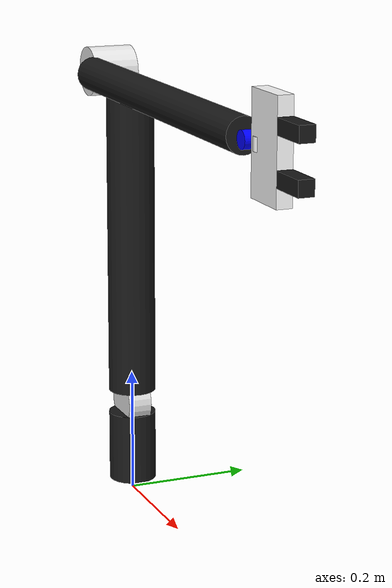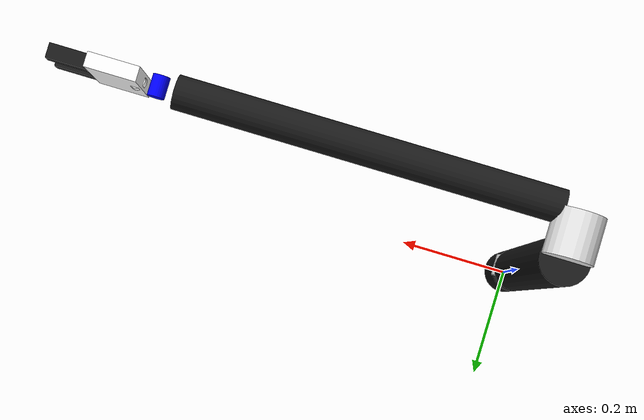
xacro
<?xml version="1.0"?>
<robot xmlns:xacro="http://www.ros.org/wiki/xacro" name="phantom_arm_robot">
    <include filename="$(find hdt)/config/urdf/common.xacro"/>
    <include filename="$(find hdt)/config/urdf/null_platform.xacro"/>
    <include filename="$(find hdt)/config/urdf/hdt.xacro"/>
    <include filename="$(find hdt)/config/urdf/fake_gripper.xacro"/>

    <xacro:hdt_arm mounting_link="base_link" mounting_origin="0.0 0.0 0.0"/>
    <xacro:fake_gripper mounting_link="arm_7_gripper_lift_link" mounting_origin="${length7+0.075} 0.0 0.0"/>
</robot>

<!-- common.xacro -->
<robot xmlns:xacro="http://www.ros.org/wiki/xacro">
    <xacro:property name="pi" value="3.1415926535897931"/>
    <xacro:property name="inches" value="0.0254"/>
    <xacro:property name="degrees" value="0.017453293"/>
</robot>

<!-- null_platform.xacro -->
<robot xmlns:xacro="http://www.ros.org/wiki/xacro" name="null">
    <link name="base_link">
    </link>
</robot>

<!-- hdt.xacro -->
<robot xmlns:xacro="http://www.ros.org/wiki/xacro">
    <xacro:property name="length1" value="0.1524" />
    <xacro:property name="radius1" value="0.0381" />

    <xacro:property name="length2" value="0.0381" />
    <xacro:property name="radius2" value="0.0381" />

    <xacro:property name="length3" value="0.5461" />
    <xacro:property name="radius3" value="0.0381" />

    <xacro:property name="length4" value="0.06985" />
    <xacro:property name="radius4" value="0.0381" />

    <xacro:property name="length5" value="0.6223" />
    <xacro:property name="radius5" value="0.0254" />

    <xacro:property name="length6" value="0.03175" />
    <xacro:property name="radius6" value="0.0127" />

    <xacro:property name="length7" value="0.01905" />
    <xacro:property name="radius7" value="0.0127" />

    <include filename="$(find hdt)/config/urdf/common.xacro"/>

    <!-- macro to instantiate the hdt arm -->
    <xacro:macro name="hdt_arm" params="mounting_link mounting_origin">
        <joint name="arm_1_shoulder_twist" type="revolute">
            <parent link="${mounting_link}"/>
            <child link="arm_1_shoulder_twist_link"/>
            <limit lower="${-175*degrees}" upper="${175*degrees}" effort="10" velocity="0.38"/>
            <axis xyz="0 0 1"/>
            <origin xyz="${mounting_origin}"/>
            <dynamics damping="10" friction="0.1"/>
        </joint>

        <link name="arm_1_shoulder_twist_link">
            <visual>
                <geometry>
                    <cylinder length="${length1-radius1}" radius="${radius1}"/>
                </geometry>
                <origin rpy="0 0 0" xyz="0.0 0.0 ${length1/2}"/>
                <material name="black">
                    <color rgba="0.1 0.1 0.1 1"/>
                </material>
            </visual>
            <collision>
                <geometry>
                    <cylinder length="${length1-radius1}" radius="${radius1}"/>
                </geometry>
                <origin rpy="0 0 0" xyz="0.0 0.0 ${length1/2}"/>
            </collision>
            <inertial>
                <mass value="1"/>
                <inertia ixx="1.0" ixy="0.0" ixz="0.0" iyy="1.0" iyz="0.0" izz="1.0"/>
                <origin xyz="0 0 ${length1/2}"/>
            </inertial>
        </link>

        <joint name="arm_2_shoulder_lift" type="revolute">
            <parent link="arm_1_shoulder_twist_link"/>
            <child link="arm_2_shoulder_lift_link"/>
            <limit lower="${-125*degrees}" upper="${125*degrees}" effort="10" velocity="0.38"/>
            <!-- safety controller not working... makes the arm very weak!! -->
            <axis xyz="0 0 -1"/>
            <origin xyz="0.0 0.0 ${length1}" rpy="${pi/2} 0 0"/>
            <dynamics damping="10" friction="0.1"/>
        </joint>

        <link name="arm_2_shoulder_lift_link" >
            <visual>
                <geometry>
                    <cylinder length="${length2}" radius="${radius2}"/>
                </geometry>
                <origin rpy="0 0 0" xyz="0.0 0 0"/>
                <material name="gray">
                    <color rgba="0.9 0.9 0.9 1"/>
                </material>
            </visual>
            <collision>
                <geometry>
                    <cylinder length="${length2}" radius="${radius2}"/>
                </geometry>
                <origin rpy="0 0 0" xyz="0.0 0 0"/>
            </collision>
            <inertial>
                <mass value="1"/>
                <inertia ixx="1.0" ixy="0.0" ixz="0.0" iyy="1.0" iyz="0.0" izz="1.0"/>
                <origin xyz="0 0 0"/>
            </inertial>
        </link>

        <joint name="arm_3_elbow_twist" type="revolute">
            <parent link="arm_2_shoulder_lift_link"/>
            <child link="arm_3_elbow_twist_link"/>
            <limit lower="${-175*degrees}" upper="${175*degrees}" effort="10" velocity="0.38"/>
            <axis xyz="0 0 1" />
            <origin xyz="0.0 0.0 0.0" rpy="${-pi/2} 0 0" />
            <dynamics damping="10" friction="0.1"/>
        </joint>

        <link name="arm_3_elbow_twist_link">
            <visual>
                <geometry>
                    <cylinder length="${length3-radius3}" radius="${radius3}"/>
                </geometry>
                <origin rpy="0 0 0" xyz="0.0 0.0 ${length3/2}"/>
                <material name="black"/>
            </visual>
            <collision>
                <geometry>
                    <cylinder length="${length3-radius3}" radius="${radius3}"/>
                    <!-- Note: There is a bug in ODE that prevents collision detection with cylinders -->
                </geometry>
                <origin rpy="0 0 0" xyz="0.0 0.0 ${length3/2}"/>
            </collision>
            <inertial>
                <mass value="1"/>
                <inertia ixx="1.0" ixy="0.0" ixz="0.0" iyy="1.0" iyz="0.0" izz="1.0"/>
                <origin xyz="0 0 ${length3/2}"/>
            </inertial>
        </link>

        <joint name="arm_4_elbow_lift" type="revolute">
            <parent link="arm_3_elbow_twist_link"/>
            <child link="arm_4_elbow_lift_link"/>
            <limit lower="${-125*degrees}" upper="${125*degrees}" effort="10" velocity="0.38"/>
            <axis xyz="0 0 -1"/>
            <origin xyz="0.0 0.0 ${length3}" rpy="${pi/2} ${pi/2} 0"/>
            <dynamics damping="10" friction="0.1"/>
        </joint>

        <link name="arm_4_elbow_lift_link">
            <visual>
                <geometry>
                    <cylinder length="${length4}" radius="${radius4}"/>
                </geometry>
                <origin rpy="0 0 0" xyz="0.0 0.0 ${length4/2}"/>
                <material name="gray"/>
            </visual>
            <collision>
                <geometry>
                    <cylinder length="${length4}" radius="${radius4}"/>
                </geometry>
                <origin rpy="0 0 0" xyz="0.0 0.0 ${length4/2}"/>
            </collision>
            <inertial>
                <mass value="1"/>
                <inertia ixx="1.0" ixy="0.0" ixz="0.0" iyy="1.0" iyz="0.0" izz="1.0"/>
                <origin xyz="0 0 ${length4/2}"/>
            </inertial>
        </link>

        <joint name="arm_5_wrist_twist" type="revolute">
            <parent link="arm_4_elbow_lift_link"/>
            <child link="arm_5_wrist_twist_link"/>
            <limit lower="${-90*degrees}" upper="${90*degrees}" effort="10" velocity="0.38"/>
            <axis xyz="0 0 1"/>
            <origin xyz="0.0 0.0 ${length4}" rpy="${-pi/2} 0 0"/>
            <dynamics damping="10" friction="0.1"/>
        </joint>

        <link name="arm_5_wrist_twist_link">
            <visual>
                <geometry>
                    <cylinder length="${length5-2*radius5}" radius="${radius5}"/>
                </geometry>
                <origin rpy="0 0 0" xyz="0.0 0.0 ${length5/2}"/>
                <material name="black"/>
            </visual>
            <collision>
                <geometry>
                    <cylinder length="${length5-radius5}" radius="${radius5}"/>
                    <!-- Note: There is a bug in ODE that prevents collision detection with cylinders -->
                </geometry>
                <origin rpy="0 0 0" xyz="0.0 0.0 ${length5/2}"/>
            </collision>
            <inertial>
                <mass value="1"/>
                <inertia ixx="1.0" ixy="0.0" ixz="0.0" iyy="1.0" iyz="0.0" izz="1.0"/>
                <origin xyz="0 0 ${length5/2}"/>
            </inertial>
        </link>

        <joint name="arm_6_wrist_lift" type="revolute">
            <parent link="arm_5_wrist_twist_link"/>
            <child link="arm_6_wrist_lift_link"/>
            <limit lower="${-60*degrees}" upper="${60*degrees}" effort="10" velocity="0.38"/>

            <axis xyz="0 0 -1"/>
            <origin xyz="0.0 0.0 ${length5}" rpy="${pi/2} -${pi/2} 0"/>
            <dynamics damping="10" friction="0.1"/>
        </joint>

        <link name="arm_6_wrist_lift_link">
            <visual>
                <geometry>
                    <cylinder length="${length6}" radius="${radius6}"/>
                </geometry>
                <origin rpy="0 0 0" xyz="0.0 0.0 0.0"/>
                <material name="gray">
                    <color rgba="0 0 1 1"/>
                </material>
            </visual>
            <collision>
                <geometry>
                    <cylinder length="${length6}" radius="${radius6}"/>
                </geometry>
                <origin rpy="0 0 0" xyz="0.0 0.0 0.0"/>
            </collision>
            <inertial>
                <mass value="1"/>
                <inertia ixx="1.0" ixy="0.0" ixz="0.0" iyy="1.0" iyz="0.0" izz="1.0"/>
            </inertial>
        </link>

        <joint name="arm_7_gripper_lift" type="revolute">
            <parent link="arm_6_wrist_lift_link"/>
            <child link="arm_7_gripper_lift_link"/>
            <limit lower="${-60*degrees}" upper="${60*degrees}" effort="10" velocity="0.38"/>
            <axis xyz="0 0 1"/>
            <origin xyz="${length6} 0 0" rpy="${-pi/2} 0 0"/>
            <dynamics damping="10" friction="0.1"/>
        </joint>

        <link name="arm_7_gripper_lift_link">
            <visual>
                <geometry>
                    <cylinder length="${length7}" radius="${radius7}"/>
                </geometry>
                <origin rpy="0 0 0" xyz="0.0 0.0 0.0"/>
                <material name="gray">
                    <color rgba="1 1 1 1"/>
                </material>
            </visual>
            <collision>
                <geometry>
                    <cylinder length="${length7}" radius="${radius7}"/>
                </geometry>
                <origin rpy="0 0 0" xyz="0.0 0.0 0.0"/>
            </collision>
            <inertial>
                <mass value="1"/>
                <inertia ixx="1.0" ixy="0.0" ixz="0.0" iyy="1.0" iyz="0.0" izz="1.0"/>
            </inertial>
        </link>

        <include filename="$(find hdt)/config/urdf/hdt_transmission.xacro"/>
    </xacro:macro>
</robot>

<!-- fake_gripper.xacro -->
<robot xmlns:xacro="http://www.ros.org/wiki/xacro">
    <include filename="$(find hdt)/config/urdf/common.xacro"/>

    <!-- macro to instantiate the fake gripper -->
    <xacro:macro name="fake_gripper" params="mounting_link mounting_origin">
        <joint name="joint_gripper_base" type="fixed">
            <parent link="${mounting_link}"/>
            <child link="gripper_base"/>
            <axis xyz="0 0 1"/>
            <origin xyz="${mounting_origin}" rpy="0 0 0"/>
        </joint>

        <link name="gripper_base">
            <visual>
                <geometry>
                    <box size="0.022 0.140 0.075"/>
                </geometry>
                <origin rpy="${pi/2} 0 ${pi/2}" xyz="${-0.075/2 - 0.03} 0 0"/>
                <material name="black">
                    <color rgba="1 1 1 1"/>
                </material>
            </visual>
            <collision>
                <geometry>
                    <box size="0.022 0.140 0.075"/>
                </geometry>
                <origin rpy="${pi/2} 0 ${pi/2}" xyz="${-0.075/2 - 0.03} 0 0"/>
            </collision>
            <inertial>
                <mass value="0.690"/>
                <inertia ixx="1.0" ixy="0.0" ixz="0.0" iyy="1.0" iyz="0.0" izz="1.0"/>
            </inertial>
        </link>

        <joint name="finger1" type="prismatic">
            <parent link="gripper_base"/>
            <child link="finger_link1"/>
            <limit lower="0.001" upper="0.042" effort="45" velocity="0.38"/>
            <axis xyz="0 0 1"/>
            <origin xyz="0.0 0.0 0.011"/>
            <dynamics damping="10" friction="0.1"/>
        </joint>

        <link name="finger_link1">
            <visual>
                <geometry>
                    <box size="0.022 0.022 0.06"/>
                </geometry>
                <origin rpy="0 ${pi/2} 0" xyz="0.0 0.0 0.00"/>
                <material name="black"/>
            </visual>
            <collision>
                <geometry>
                    <box size="0.022 0.022 0.06"/>
                </geometry>
                <origin rpy="0 ${pi/2} 0" xyz="0.0 0.0 0.00"/>
            </collision>
            <inertial>
                <mass value="0.1"/>
                <inertia ixx="1.0" ixy="0.0" ixz="0.0" iyy="1.0" iyz="0.0" izz="1.0"/>
            </inertial>
        </link>

        <joint name="finger2" type="prismatic">
            <parent link="gripper_base"/>
            <child link="finger_link2"/>
            <limit lower="0.001" upper="0.042" effort="45" velocity="0.38"/>
            <axis xyz="0 0 -1"/>
            <origin xyz="0.0 0.0 -0.011"/>
            <dynamics damping="10" friction="0.1"/>
        </joint>

        <link name="finger_link2">
            <visual>
                <geometry>
                    <box size="0.022 0.022 0.06"/>
                </geometry>
                <origin rpy="0 ${pi/2} 0" xyz="0.0 0.0 0.00"/>
                <material name="black"/>
            </visual>
            <collision>
                <geometry>
                    <box size="0.022 0.022 0.06"/>
                </geometry>
                <origin rpy="0 ${pi/2} 0" xyz="0.0 0.0 0.00"/>
            </collision>
            <inertial>
                <mass value="0.1"/>
                <inertia ixx="1.0" ixy="0.0" ixz="0.0" iyy="1.0" iyz="0.0" izz="1.0"/>
            </inertial>
        </link>
    </xacro:macro>
</robot>
